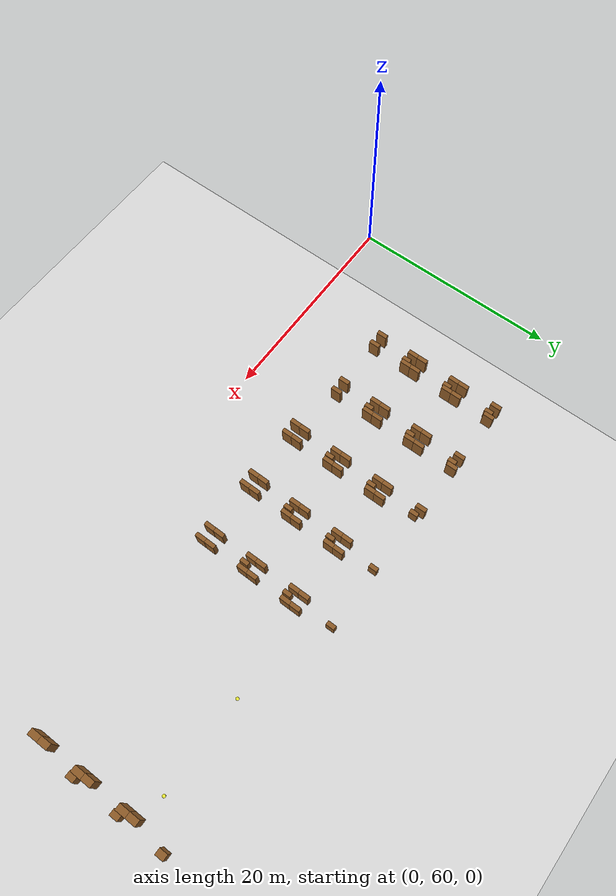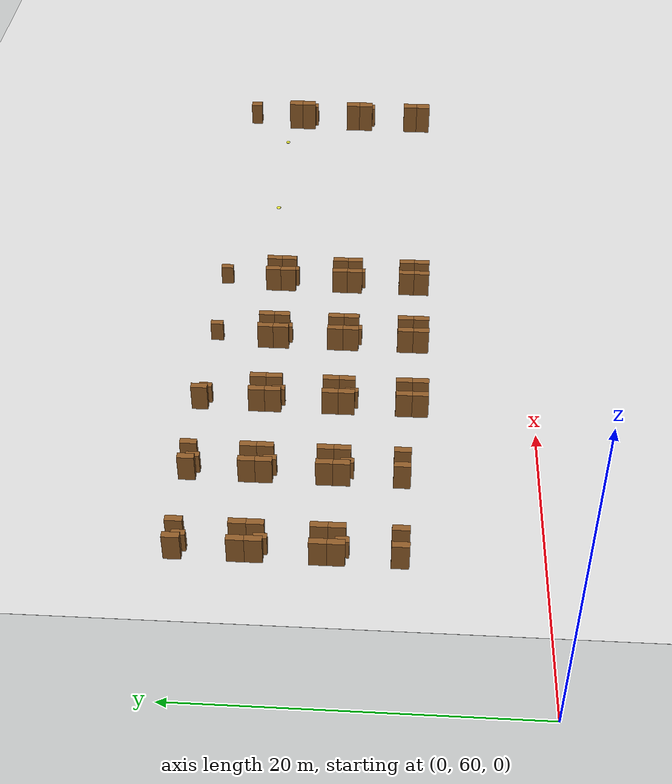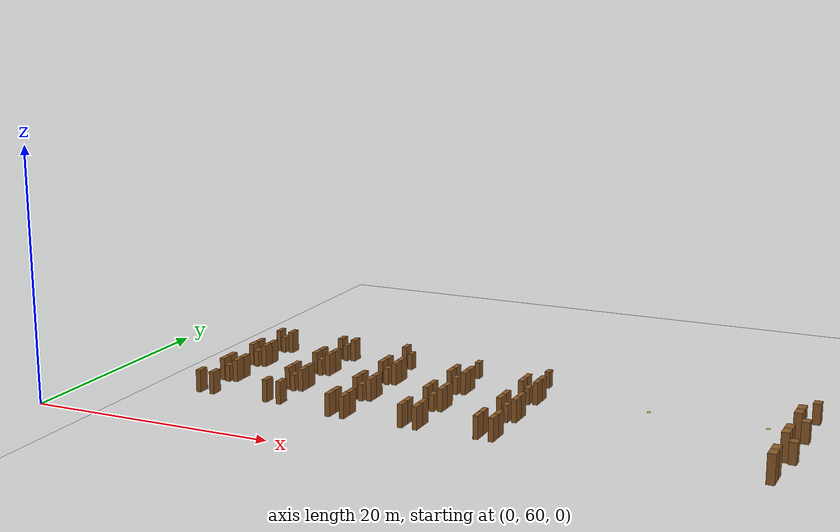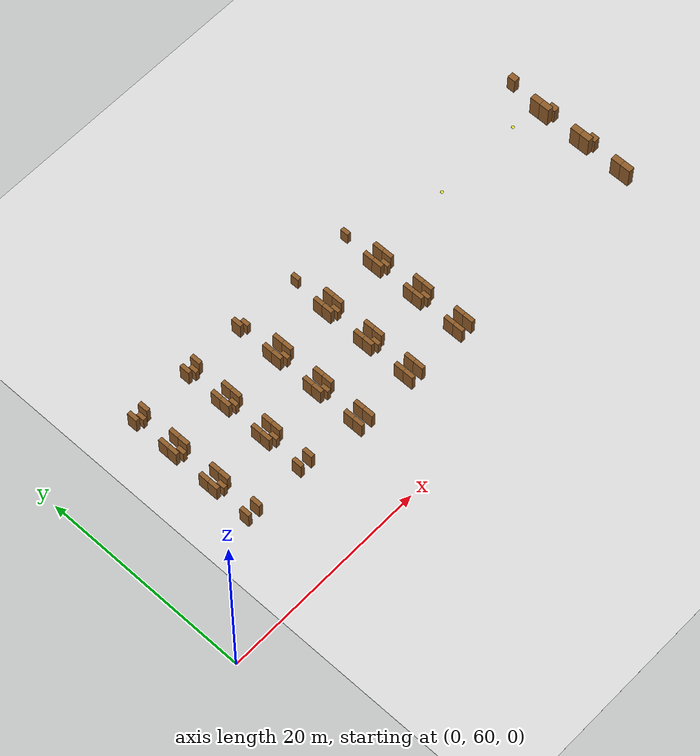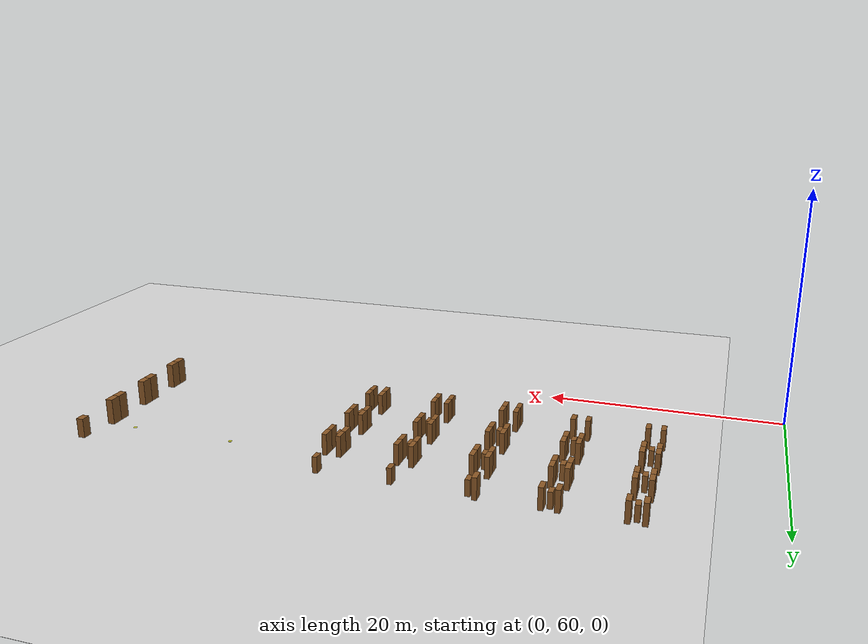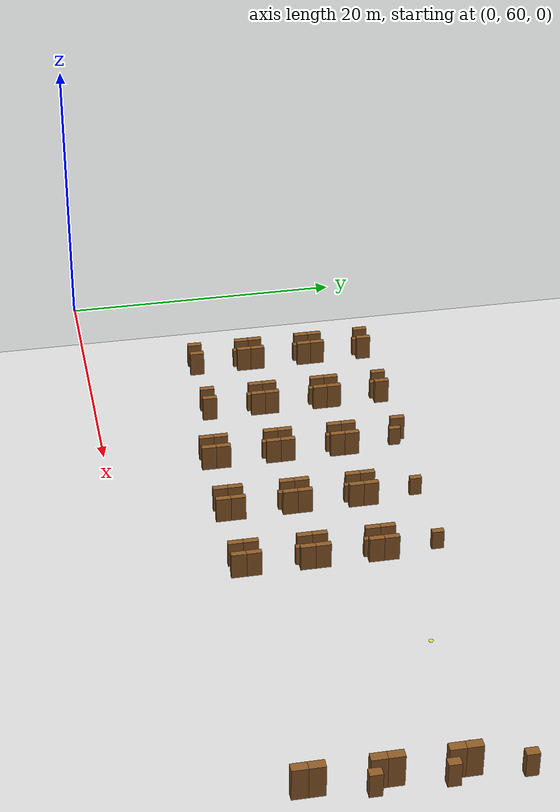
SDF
<sdf version="1.9">
 <world name="realistic_warehouse_150x200m">
  <model name="ground_plane">
   <static>true</static>
   <pose>68.5 102.0 0 0 0 0</pose>
   <link name="ground_link">
    <visual name="ground_visual">
     <geometry><box><size>127.0 194.0 0.01</size></box></geometry>
     <material><ambient>0.85 0.85 0.85 1.0</ambient><diffuse>0.85 0.85 0.85 1.0</diffuse></material>
    </visual>
    <collision name="ground_visual_collision">
     <geometry><box><size>127.0 194.0 0.01</size></box></geometry>
    </collision>
    <collision name="ground_collision">
     <geometry><plane><normal>0 0 1</normal><size>127.0 194.0</size></plane></geometry>
    </collision>
   </link>
  </model>
  <model name="rack_Zone_G_A0_S1_1004">
   <static>true</static>
   <pose>9.4 68.0 0.9 0 0 0</pose>
   <link name="rack_Zone_G_A0_S1_1004_link">
    <visual name="rack_Zone_G_A0_S1_1004_vis">
     <geometry><box><size>0.4 1.0 1.8</size></box></geometry>
     <material><ambient>0.55 0.35 0.15 1.0</ambient><diffuse>0.55 0.35 0.15 1.0</diffuse></material>
    </visual>
    <collision name="rack_Zone_G_A0_S1_1004_vis_collision">
     <geometry><box><size>0.4 1.0 1.8</size></box></geometry>
    </collision>
   </link>
  </model>
  <model name="rack_Zone_G_A0_S1_1006">
   <static>true</static>
   <pose>10.6 68.0 0.9 0 0 0</pose>
   <link name="rack_Zone_G_A0_S1_1006_link">
    <visual name="rack_Zone_G_A0_S1_1006_vis">
     <geometry><box><size>0.4 1.0 1.8</size></box></geometry>
     <material><ambient>0.55 0.35 0.15 1.0</ambient><diffuse>0.55 0.35 0.15 1.0</diffuse></material>
    </visual>
    <collision name="rack_Zone_G_A0_S1_1006_vis_collision">
     <geometry><box><size>0.4 1.0 1.8</size></box></geometry>
    </collision>
   </link>
  </model>
  <model name="rack_Zone_G_A0_S2_1008">
   <static>true</static>
   <pose>9.4 71.5 0.9 0 0 0</pose>
   <link name="rack_Zone_G_A0_S2_1008_link">
    <visual name="rack_Zone_G_A0_S2_1008_vis">
     <geometry><box><size>0.4 1.0 1.8</size></box></geometry>
     <material><ambient>0.55 0.35 0.15 1.0</ambient><diffuse>0.55 0.35 0.15 1.0</diffuse></material>
    </visual>
    <collision name="rack_Zone_G_A0_S2_1008_vis_collision">
     <geometry><box><size>0.4 1.0 1.8</size></box></geometry>
    </collision>
   </link>
  </model>
  <model name="rack_Zone_G_A0_S2_1009">
   <static>true</static>
   <pose>9.4 72.5 0.9 0 0 0</pose>
   <link name="rack_Zone_G_A0_S2_1009_link">
    <visual name="rack_Zone_G_A0_S2_1009_vis">
     <geometry><box><size>0.4 1.0 1.8</size></box></geometry>
     <material><ambient>0.55 0.35 0.15 1.0</ambient><diffuse>0.55 0.35 0.15 1.0</diffuse></material>
    </visual>
    <collision name="rack_Zone_G_A0_S2_1009_vis_collision">
     <geometry><box><size>0.4 1.0 1.8</size></box></geometry>
    </collision>
   </link>
  </model>
  <model name="rack_Zone_G_A0_S2_1010">
   <static>true</static>
   <pose>10.6 71.5 0.9 0 0 0</pose>
   <link name="rack_Zone_G_A0_S2_1010_link">
    <visual name="rack_Zone_G_A0_S2_1010_vis">
     <geometry><box><size>0.4 1.0 1.8</size></box></geometry>
     <material><ambient>0.55 0.35 0.15 1.0</ambient><diffuse>0.55 0.35 0.15 1.0</diffuse></material>
    </visual>
    <collision name="rack_Zone_G_A0_S2_1010_vis_collision">
     <geometry><box><size>0.4 1.0 1.8</size></box></geometry>
    </collision>
   </link>
  </model>
  <model name="rack_Zone_G_A0_S2_1011">
   <static>true</static>
   <pose>10.6 72.5 0.9 0 0 0</pose>
   <link name="rack_Zone_G_A0_S2_1011_link">
    <visual name="rack_Zone_G_A0_S2_1011_vis">
     <geometry><box><size>0.4 1.0 1.8</size></box></geometry>
     <material><ambient>0.55 0.35 0.15 1.0</ambient><diffuse>0.55 0.35 0.15 1.0</diffuse></material>
    </visual>
    <collision name="rack_Zone_G_A0_S2_1011_vis_collision">
     <geometry><box><size>0.4 1.0 1.8</size></box></geometry>
    </collision>
   </link>
  </model>
  <model name="rack_Zone_G_A0_S2_1012">
   <static>true</static>
   <pose>10.0 71.2 0.675 0 0 0</pose>
   <link name="rack_Zone_G_A0_S2_1012_link">
    <visual name="rack_Zone_G_A0_S2_1012_vis">
     <geometry><box><size>0.4 0.8 1.35</size></box></geometry>
     <material><ambient>0.55 0.35 0.15 1.0</ambient><diffuse>0.55 0.35 0.15 1.0</diffuse></material>
    </visual>
    <collision name="rack_Zone_G_A0_S2_1012_vis_collision">
     <geometry><box><size>0.4 0.8 1.35</size></box></geometry>
    </collision>
   </link>
  </model>
  <model name="rack_Zone_G_A0_S3_1013">
   <static>true</static>
   <pose>9.4 76.0 0.9 0 0 0</pose>
   <link name="rack_Zone_G_A0_S3_1013_link">
    <visual name="rack_Zone_G_A0_S3_1013_vis">
     <geometry><box><size>0.4 1.0 1.8</size></box></geometry>
     <material><ambient>0.55 0.35 0.15 1.0</ambient><diffuse>0.55 0.35 0.15 1.0</diffuse></material>
    </visual>
    <collision name="rack_Zone_G_A0_S3_1013_vis_collision">
     <geometry><box><size>0.4 1.0 1.8</size></box></geometry>
    </collision>
   </link>
  </model>
  <model name="rack_Zone_G_A0_S3_1014">
   <static>true</static>
   <pose>9.4 77.0 0.9 0 0 0</pose>
   <link name="rack_Zone_G_A0_S3_1014_link">
    <visual name="rack_Zone_G_A0_S3_1014_vis">
     <geometry><box><size>0.4 1.0 1.8</size></box></geometry>
     <material><ambient>0.55 0.35 0.15 1.0</ambient><diffuse>0.55 0.35 0.15 1.0</diffuse></material>
    </visual>
    <collision name="rack_Zone_G_A0_S3_1014_vis_collision">
     <geometry><box><size>0.4 1.0 1.8</size></box></geometry>
    </collision>
   </link>
  </model>
  <model name="rack_Zone_G_A0_S3_1015">
   <static>true</static>
   <pose>10.6 76.0 0.9 0 0 0</pose>
   <link name="rack_Zone_G_A0_S3_1015_link">
    <visual name="rack_Zone_G_A0_S3_1015_vis">
     <geometry><box><size>0.4 1.0 1.8</size></box></geometry>
     <material><ambient>0.55 0.35 0.15 1.0</ambient><diffuse>0.55 0.35 0.15 1.0</diffuse></material>
    </visual>
    <collision name="rack_Zone_G_A0_S3_1015_vis_collision">
     <geometry><box><size>0.4 1.0 1.8</size></box></geometry>
    </collision>
   </link>
  </model>
  <model name="rack_Zone_G_A0_S3_1016">
   <static>true</static>
   <pose>10.6 77.0 0.9 0 0 0</pose>
   <link name="rack_Zone_G_A0_S3_1016_link">
    <visual name="rack_Zone_G_A0_S3_1016_vis">
     <geometry><box><size>0.4 1.0 1.8</size></box></geometry>
     <material><ambient>0.55 0.35 0.15 1.0</ambient><diffuse>0.55 0.35 0.15 1.0</diffuse></material>
    </visual>
    <collision name="rack_Zone_G_A0_S3_1016_vis_collision">
     <geometry><box><size>0.4 1.0 1.8</size></box></geometry>
    </collision>
   </link>
  </model>
  <model name="rack_Zone_G_A0_S3_1017">
   <static>true</static>
   <pose>10.0 75.7 0.675 0 0 0</pose>
   <link name="rack_Zone_G_A0_S3_1017_link">
    <visual name="rack_Zone_G_A0_S3_1017_vis">
     <geometry><box><size>0.4 0.8 1.35</size></box></geometry>
     <material><ambient>0.55 0.35 0.15 1.0</ambient><diffuse>0.55 0.35 0.15 1.0</diffuse></material>
    </visual>
    <collision name="rack_Zone_G_A0_S3_1017_vis_collision">
     <geometry><box><size>0.4 0.8 1.35</size></box></geometry>
    </collision>
   </link>
  </model>
  <model name="rack_Zone_G_A0_S4_1018">
   <static>true</static>
   <pose>9.4 80.5 0.9 0 0 0</pose>
   <link name="rack_Zone_G_A0_S4_1018_link">
    <visual name="rack_Zone_G_A0_S4_1018_vis">
     <geometry><box><size>0.4 1.0 1.8</size></box></geometry>
     <material><ambient>0.55 0.35 0.15 1.0</ambient><diffuse>0.55 0.35 0.15 1.0</diffuse></material>
    </visual>
    <collision name="rack_Zone_G_A0_S4_1018_vis_collision">
     <geometry><box><size>0.4 1.0 1.8</size></box></geometry>
    </collision>
   </link>
  </model>
  <model name="rack_Zone_G_A0_S4_1020">
   <static>true</static>
   <pose>10.6 80.5 0.9 0 0 0</pose>
   <link name="rack_Zone_G_A0_S4_1020_link">
    <visual name="rack_Zone_G_A0_S4_1020_vis">
     <geometry><box><size>0.4 1.0 1.8</size></box></geometry>
     <material><ambient>0.55 0.35 0.15 1.0</ambient><diffuse>0.55 0.35 0.15 1.0</diffuse></material>
    </visual>
    <collision name="rack_Zone_G_A0_S4_1020_vis_collision">
     <geometry><box><size>0.4 1.0 1.8</size></box></geometry>
    </collision>
   </link>
  </model>
  <model name="rack_Zone_G_A0_S4_1022">
   <static>true</static>
   <pose>10.0 80.2 0.675 0 0 0</pose>
   <link name="rack_Zone_G_A0_S4_1022_link">
    <visual name="rack_Zone_G_A0_S4_1022_vis">
     <geometry><box><size>0.4 0.8 1.35</size></box></geometry>
     <material><ambient>0.55 0.35 0.15 1.0</ambient><diffuse>0.55 0.35 0.15 1.0</diffuse></material>
    </visual>
    <collision name="rack_Zone_G_A0_S4_1022_vis_collision">
     <geometry><box><size>0.4 0.8 1.35</size></box></geometry>
    </collision>
   </link>
  </model>
  <model name="rack_Zone_G_A1_S1_1048">
   <static>true</static>
   <pose>15.4 68.0 0.9 0 0 0</pose>
   <link name="rack_Zone_G_A1_S1_1048_link">
    <visual name="rack_Zone_G_A1_S1_1048_vis">
     <geometry><box><size>0.4 1.0 1.8</size></box></geometry>
     <material><ambient>0.55 0.35 0.15 1.0</ambient><diffuse>0.55 0.35 0.15 1.0</diffuse></material>
    </visual>
    <collision name="rack_Zone_G_A1_S1_1048_vis_collision">
     <geometry><box><size>0.4 1.0 1.8</size></box></geometry>
    </collision>
   </link>
  </model>
  <model name="rack_Zone_G_A1_S1_1050">
   <static>true</static>
   <pose>16.6 68.0 0.9 0 0 0</pose>
   <link name="rack_Zone_G_A1_S1_1050_link">
    <visual name="rack_Zone_G_A1_S1_1050_vis">
     <geometry><box><size>0.4 1.0 1.8</size></box></geometry>
     <material><ambient>0.55 0.35 0.15 1.0</ambient><diffuse>0.55 0.35 0.15 1.0</diffuse></material>
    </visual>
    <collision name="rack_Zone_G_A1_S1_1050_vis_collision">
     <geometry><box><size>0.4 1.0 1.8</size></box></geometry>
    </collision>
   </link>
  </model>
  <model name="rack_Zone_G_A1_S2_1052">
   <static>true</static>
   <pose>15.4 71.5 0.9 0 0 0</pose>
   <link name="rack_Zone_G_A1_S2_1052_link">
    <visual name="rack_Zone_G_A1_S2_1052_vis">
     <geometry><box><size>0.4 1.0 1.8</size></box></geometry>
     <material><ambient>0.55 0.35 0.15 1.0</ambient><diffuse>0.55 0.35 0.15 1.0</diffuse></material>
    </visual>
    <collision name="rack_Zone_G_A1_S2_1052_vis_collision">
     <geometry><box><size>0.4 1.0 1.8</size></box></geometry>
    </collision>
   </link>
  </model>
  <model name="rack_Zone_G_A1_S2_1053">
   <static>true</static>
   <pose>15.4 72.5 0.9 0 0 0</pose>
   <link name="rack_Zone_G_A1_S2_1053_link">
    <visual name="rack_Zone_G_A1_S2_1053_vis">
     <geometry><box><size>0.4 1.0 1.8</size></box></geometry>
     <material><ambient>0.55 0.35 0.15 1.0</ambient><diffuse>0.55 0.35 0.15 1.0</diffuse></material>
    </visual>
    <collision name="rack_Zone_G_A1_S2_1053_vis_collision">
     <geometry><box><size>0.4 1.0 1.8</size></box></geometry>
    </collision>
   </link>
  </model>
  <model name="rack_Zone_G_A1_S2_1054">
   <static>true</static>
   <pose>16.6 71.5 0.9 0 0 0</pose>
   <link name="rack_Zone_G_A1_S2_1054_link">
    <visual name="rack_Zone_G_A1_S2_1054_vis">
     <geometry><box><size>0.4 1.0 1.8</size></box></geometry>
     <material><ambient>0.55 0.35 0.15 1.0</ambient><diffuse>0.55 0.35 0.15 1.0</diffuse></material>
    </visual>
    <collision name="rack_Zone_G_A1_S2_1054_vis_collision">
     <geometry><box><size>0.4 1.0 1.8</size></box></geometry>
    </collision>
   </link>
  </model>
  <model name="rack_Zone_G_A1_S2_1055">
   <static>true</static>
   <pose>16.6 72.5 0.9 0 0 0</pose>
   <link name="rack_Zone_G_A1_S2_1055_link">
    <visual name="rack_Zone_G_A1_S2_1055_vis">
     <geometry><box><size>0.4 1.0 1.8</size></box></geometry>
     <material><ambient>0.55 0.35 0.15 1.0</ambient><diffuse>0.55 0.35 0.15 1.0</diffuse></material>
    </visual>
    <collision name="rack_Zone_G_A1_S2_1055_vis_collision">
     <geometry><box><size>0.4 1.0 1.8</size></box></geometry>
    </collision>
   </link>
  </model>
  <model name="rack_Zone_G_A1_S2_1056">
   <static>true</static>
   <pose>16.0 71.2 0.675 0 0 0</pose>
   <link name="rack_Zone_G_A1_S2_1056_link">
    <visual name="rack_Zone_G_A1_S2_1056_vis">
     <geometry><box><size>0.4 0.8 1.35</size></box></geometry>
     <material><ambient>0.55 0.35 0.15 1.0</ambient><diffuse>0.55 0.35 0.15 1.0</diffuse></material>
    </visual>
    <collision name="rack_Zone_G_A1_S2_1056_vis_collision">
     <geometry><box><size>0.4 0.8 1.35</size></box></geometry>
    </collision>
   </link>
  </model>
  <model name="rack_Zone_G_A1_S3_1057">
   <static>true</static>
   <pose>15.4 76.0 0.9 0 0 0</pose>
   <link name="rack_Zone_G_A1_S3_1057_link">
    <visual name="rack_Zone_G_A1_S3_1057_vis">
     <geometry><box><size>0.4 1.0 1.8</size></box></geometry>
     <material><ambient>0.55 0.35 0.15 1.0</ambient><diffuse>0.55 0.35 0.15 1.0</diffuse></material>
    </visual>
    <collision name="rack_Zone_G_A1_S3_1057_vis_collision">
     <geometry><box><size>0.4 1.0 1.8</size></box></geometry>
    </collision>
   </link>
  </model>
  <model name="rack_Zone_G_A1_S3_1058">
   <static>true</static>
   <pose>15.4 77.0 0.9 0 0 0</pose>
   <link name="rack_Zone_G_A1_S3_1058_link">
    <visual name="rack_Zone_G_A1_S3_1058_vis">
     <geometry><box><size>0.4 1.0 1.8</size></box></geometry>
     <material><ambient>0.55 0.35 0.15 1.0</ambient><diffuse>0.55 0.35 0.15 1.0</diffuse></material>
    </visual>
    <collision name="rack_Zone_G_A1_S3_1058_vis_collision">
     <geometry><box><size>0.4 1.0 1.8</size></box></geometry>
    </collision>
   </link>
  </model>
  <model name="rack_Zone_G_A1_S3_1059">
   <static>true</static>
   <pose>16.6 76.0 0.9 0 0 0</pose>
   <link name="rack_Zone_G_A1_S3_1059_link">
    <visual name="rack_Zone_G_A1_S3_1059_vis">
     <geometry><box><size>0.4 1.0 1.8</size></box></geometry>
     <material><ambient>0.55 0.35 0.15 1.0</ambient><diffuse>0.55 0.35 0.15 1.0</diffuse></material>
    </visual>
    <collision name="rack_Zone_G_A1_S3_1059_vis_collision">
     <geometry><box><size>0.4 1.0 1.8</size></box></geometry>
    </collision>
   </link>
  </model>
  <model name="rack_Zone_G_A1_S3_1060">
   <static>true</static>
   <pose>16.6 77.0 0.9 0 0 0</pose>
   <link name="rack_Zone_G_A1_S3_1060_link">
    <visual name="rack_Zone_G_A1_S3_1060_vis">
     <geometry><box><size>0.4 1.0 1.8</size></box></geometry>
     <material><ambient>0.55 0.35 0.15 1.0</ambient><diffuse>0.55 0.35 0.15 1.0</diffuse></material>
    </visual>
    <collision name="rack_Zone_G_A1_S3_1060_vis_collision">
     <geometry><box><size>0.4 1.0 1.8</size></box></geometry>
    </collision>
   </link>
  </model>
  <model name="rack_Zone_G_A1_S3_1061">
   <static>true</static>
   <pose>16.0 75.7 0.675 0 0 0</pose>
   <link name="rack_Zone_G_A1_S3_1061_link">
    <visual name="rack_Zone_G_A1_S3_1061_vis">
     <geometry><box><size>0.4 0.8 1.35</size></box></geometry>
     <material><ambient>0.55 0.35 0.15 1.0</ambient><diffuse>0.55 0.35 0.15 1.0</diffuse></material>
    </visual>
    <collision name="rack_Zone_G_A1_S3_1061_vis_collision">
     <geometry><box><size>0.4 0.8 1.35</size></box></geometry>
    </collision>
   </link>
  </model>
  <model name="rack_Zone_G_A1_S4_1062">
   <static>true</static>
   <pose>15.4 80.5 0.9 0 0 0</pose>
   <link name="rack_Zone_G_A1_S4_1062_link">
    <visual name="rack_Zone_G_A1_S4_1062_vis">
     <geometry><box><size>0.4 1.0 1.8</size></box></geometry>
     <material><ambient>0.55 0.35 0.15 1.0</ambient><diffuse>0.55 0.35 0.15 1.0</diffuse></material>
    </visual>
    <collision name="rack_Zone_G_A1_S4_1062_vis_collision">
     <geometry><box><size>0.4 1.0 1.8</size></box></geometry>
    </collision>
   </link>
  </model>
  <model name="rack_Zone_G_A1_S4_1064">
   <static>true</static>
   <pose>16.6 80.5 0.9 0 0 0</pose>
   <link name="rack_Zone_G_A1_S4_1064_link">
    <visual name="rack_Zone_G_A1_S4_1064_vis">
     <geometry><box><size>0.4 1.0 1.8</size></box></geometry>
     <material><ambient>0.55 0.35 0.15 1.0</ambient><diffuse>0.55 0.35 0.15 1.0</diffuse></material>
    </visual>
    <collision name="rack_Zone_G_A1_S4_1064_vis_collision">
     <geometry><box><size>0.4 1.0 1.8</size></box></geometry>
    </collision>
   </link>
  </model>
  <model name="rack_Zone_G_A1_S4_1066">
   <static>true</static>
   <pose>16.0 80.2 0.675 0 0 0</pose>
   <link name="rack_Zone_G_A1_S4_1066_link">
    <visual name="rack_Zone_G_A1_S4_1066_vis">
     <geometry><box><size>0.4 0.8 1.35</size></box></geometry>
     <material><ambient>0.55 0.35 0.15 1.0</ambient><diffuse>0.55 0.35 0.15 1.0</diffuse></material>
    </visual>
    <collision name="rack_Zone_G_A1_S4_1066_vis_collision">
     <geometry><box><size>0.4 0.8 1.35</size></box></geometry>
    </collision>
   </link>
  </model>
  <model name="rack_Zone_G_A2_S1_1091">
   <static>true</static>
   <pose>21.4 67.0 0.9 0 0 0</pose>
   <link name="rack_Zone_G_A2_S1_1091_link">
    <visual name="rack_Zone_G_A2_S1_1091_vis">
     <geometry><box><size>0.4 1.0 1.8</size></box></geometry>
     <material><ambient>0.55 0.35 0.15 1.0</ambient><diffuse>0.55 0.35 0.15 1.0</diffuse></material>
    </visual>
    <collision name="rack_Zone_G_A2_S1_1091_vis_collision">
     <geometry><box><size>0.4 1.0 1.8</size></box></geometry>
    </collision>
   </link>
  </model>
  <model name="rack_Zone_G_A2_S1_1092">
   <static>true</static>
   <pose>21.4 68.0 0.9 0 0 0</pose>
   <link name="rack_Zone_G_A2_S1_1092_link">
    <visual name="rack_Zone_G_A2_S1_1092_vis">
     <geometry><box><size>0.4 1.0 1.8</size></box></geometry>
     <material><ambient>0.55 0.35 0.15 1.0</ambient><diffuse>0.55 0.35 0.15 1.0</diffuse></material>
    </visual>
    <collision name="rack_Zone_G_A2_S1_1092_vis_collision">
     <geometry><box><size>0.4 1.0 1.8</size></box></geometry>
    </collision>
   </link>
  </model>
  <model name="rack_Zone_G_A2_S1_1093">
   <static>true</static>
   <pose>22.6 67.0 0.9 0 0 0</pose>
   <link name="rack_Zone_G_A2_S1_1093_link">
    <visual name="rack_Zone_G_A2_S1_1093_vis">
     <geometry><box><size>0.4 1.0 1.8</size></box></geometry>
     <material><ambient>0.55 0.35 0.15 1.0</ambient><diffuse>0.55 0.35 0.15 1.0</diffuse></material>
    </visual>
    <collision name="rack_Zone_G_A2_S1_1093_vis_collision">
     <geometry><box><size>0.4 1.0 1.8</size></box></geometry>
    </collision>
   </link>
  </model>
  <model name="rack_Zone_G_A2_S1_1094">
   <static>true</static>
   <pose>22.6 68.0 0.9 0 0 0</pose>
   <link name="rack_Zone_G_A2_S1_1094_link">
    <visual name="rack_Zone_G_A2_S1_1094_vis">
     <geometry><box><size>0.4 1.0 1.8</size></box></geometry>
     <material><ambient>0.55 0.35 0.15 1.0</ambient><diffuse>0.55 0.35 0.15 1.0</diffuse></material>
    </visual>
    <collision name="rack_Zone_G_A2_S1_1094_vis_collision">
     <geometry><box><size>0.4 1.0 1.8</size></box></geometry>
    </collision>
   </link>
  </model>
  <model name="rack_Zone_G_A2_S2_1096">
   <static>true</static>
   <pose>21.4 71.5 0.9 0 0 0</pose>
   <link name="rack_Zone_G_A2_S2_1096_link">
    <visual name="rack_Zone_G_A2_S2_1096_vis">
     <geometry><box><size>0.4 1.0 1.8</size></box></geometry>
     <material><ambient>0.55 0.35 0.15 1.0</ambient><diffuse>0.55 0.35 0.15 1.0</diffuse></material>
    </visual>
    <collision name="rack_Zone_G_A2_S2_1096_vis_collision">
     <geometry><box><size>0.4 1.0 1.8</size></box></geometry>
    </collision>
   </link>
  </model>
  <model name="rack_Zone_G_A2_S2_1097">
   <static>true</static>
   <pose>21.4 72.5 0.9 0 0 0</pose>
   <link name="rack_Zone_G_A2_S2_1097_link">
    <visual name="rack_Zone_G_A2_S2_1097_vis">
     <geometry><box><size>0.4 1.0 1.8</size></box></geometry>
     <material><ambient>0.55 0.35 0.15 1.0</ambient><diffuse>0.55 0.35 0.15 1.0</diffuse></material>
    </visual>
    <collision name="rack_Zone_G_A2_S2_1097_vis_collision">
     <geometry><box><size>0.4 1.0 1.8</size></box></geometry>
    </collision>
   </link>
  </model>
  <model name="rack_Zone_G_A2_S2_1098">
   <static>true</static>
   <pose>22.6 71.5 0.9 0 0 0</pose>
   <link name="rack_Zone_G_A2_S2_1098_link">
    <visual name="rack_Zone_G_A2_S2_1098_vis">
     <geometry><box><size>0.4 1.0 1.8</size></box></geometry>
     <material><ambient>0.55 0.35 0.15 1.0</ambient><diffuse>0.55 0.35 0.15 1.0</diffuse></material>
    </visual>
    <collision name="rack_Zone_G_A2_S2_1098_vis_collision">
     <geometry><box><size>0.4 1.0 1.8</size></box></geometry>
    </collision>
   </link>
  </model>
  <model name="rack_Zone_G_A2_S2_1099">
   <static>true</static>
   <pose>22.6 72.5 0.9 0 0 0</pose>
   <link name="rack_Zone_G_A2_S2_1099_link">
    <visual name="rack_Zone_G_A2_S2_1099_vis">
     <geometry><box><size>0.4 1.0 1.8</size></box></geometry>
     <material><ambient>0.55 0.35 0.15 1.0</ambient><diffuse>0.55 0.35 0.15 1.0</diffuse></material>
    </visual>
    <collision name="rack_Zone_G_A2_S2_1099_vis_collision">
     <geometry><box><size>0.4 1.0 1.8</size></box></geometry>
    </collision>
   </link>
  </model>
  <model name="rack_Zone_G_A2_S2_1100">
   <static>true</static>
   <pose>22.0 71.2 0.675 0 0 0</pose>
   <link name="rack_Zone_G_A2_S2_1100_link">
    <visual name="rack_Zone_G_A2_S2_1100_vis">
     <geometry><box><size>0.4 0.8 1.35</size></box></geometry>
     <material><ambient>0.55 0.35 0.15 1.0</ambient><diffuse>0.55 0.35 0.15 1.0</diffuse></material>
    </visual>
    <collision name="rack_Zone_G_A2_S2_1100_vis_collision">
     <geometry><box><size>0.4 0.8 1.35</size></box></geometry>
    </collision>
   </link>
  </model>
  <model name="rack_Zone_G_A2_S3_1101">
   <static>true</static>
   <pose>21.4 76.0 0.9 0 0 0</pose>
   <link name="rack_Zone_G_A2_S3_1101_link">
    <visual name="rack_Zone_G_A2_S3_1101_vis">
     <geometry><box><size>0.4 1.0 1.8</size></box></geometry>
     <material><ambient>0.55 0.35 0.15 1.0</ambient><diffuse>0.55 0.35 0.15 1.0</diffuse></material>
    </visual>
    <collision name="rack_Zone_G_A2_S3_1101_vis_collision">
     <geometry><box><size>0.4 1.0 1.8</size></box></geometry>
    </collision>
   </link>
  </model>
  <model name="rack_Zone_G_A2_S3_1102">
   <static>true</static>
   <pose>21.4 77.0 0.9 0 0 0</pose>
   <link name="rack_Zone_G_A2_S3_1102_link">
    <visual name="rack_Zone_G_A2_S3_1102_vis">
     <geometry><box><size>0.4 1.0 1.8</size></box></geometry>
     <material><ambient>0.55 0.35 0.15 1.0</ambient><diffuse>0.55 0.35 0.15 1.0</diffuse></material>
    </visual>
    <collision name="rack_Zone_G_A2_S3_1102_vis_collision">
     <geometry><box><size>0.4 1.0 1.8</size></box></geometry>
    </collision>
   </link>
  </model>
  <model name="rack_Zone_G_A2_S3_1103">
   <static>true</static>
   <pose>22.6 76.0 0.9 0 0 0</pose>
   <link name="rack_Zone_G_A2_S3_1103_link">
    <visual name="rack_Zone_G_A2_S3_1103_vis">
     <geometry><box><size>0.4 1.0 1.8</size></box></geometry>
     <material><ambient>0.55 0.35 0.15 1.0</ambient><diffuse>0.55 0.35 0.15 1.0</diffuse></material>
    </visual>
    <collision name="rack_Zone_G_A2_S3_1103_vis_collision">
     <geometry><box><size>0.4 1.0 1.8</size></box></geometry>
    </collision>
   </link>
  </model>
  <model name="rack_Zone_G_A2_S3_1104">
   <static>true</static>
   <pose>22.6 77.0 0.9 0 0 0</pose>
   <link name="rack_Zone_G_A2_S3_1104_link">
    <visual name="rack_Zone_G_A2_S3_1104_vis">
     <geometry><box><size>0.4 1.0 1.8</size></box></geometry>
     <material><ambient>0.55 0.35 0.15 1.0</ambient><diffuse>0.55 0.35 0.15 1.0</diffuse></material>
    </visual>
    <collision name="rack_Zone_G_A2_S3_1104_vis_collision">
     <geometry><box><size>0.4 1.0 1.8</size></box></geometry>
    </collision>
   </link>
  </model>
  <model name="rack_Zone_G_A2_S3_1105">
   <static>true</static>
   <pose>22.0 75.7 0.675 0 0 0</pose>
   <link name="rack_Zone_G_A2_S3_1105_link">
    <visual name="rack_Zone_G_A2_S3_1105_vis">
     <geometry><box><size>0.4 0.8 1.35</size></box></geometry>
     <material><ambient>0.55 0.35 0.15 1.0</ambient><diffuse>0.55 0.35 0.15 1.0</diffuse></material>
    </visual>
    <collision name="rack_Zone_G_A2_S3_1105_vis_collision">
     <geometry><box><size>0.4 0.8 1.35</size></box></geometry>
    </collision>
   </link>
  </model>
  <model name="rack_Zone_G_A2_S4_1106">
   <static>true</static>
   <pose>21.4 80.5 0.9 0 0 0</pose>
   <link name="rack_Zone_G_A2_S4_1106_link">
    <visual name="rack_Zone_G_A2_S4_1106_vis">
     <geometry><box><size>0.4 1.0 1.8</size></box></geometry>
     <material><ambient>0.55 0.35 0.15 1.0</ambient><diffuse>0.55 0.35 0.15 1.0</diffuse></material>
    </visual>
    <collision name="rack_Zone_G_A2_S4_1106_vis_collision">
     <geometry><box><size>0.4 1.0 1.8</size></box></geometry>
    </collision>
   </link>
  </model>
  <model name="rack_Zone_G_A2_S4_1110">
   <static>true</static>
   <pose>22.0 80.2 0.675 0 0 0</pose>
   <link name="rack_Zone_G_A2_S4_1110_link">
    <visual name="rack_Zone_G_A2_S4_1110_vis">
     <geometry><box><size>0.4 0.8 1.35</size></box></geometry>
     <material><ambient>0.55 0.35 0.15 1.0</ambient><diffuse>0.55 0.35 0.15 1.0</diffuse></material>
    </visual>
    <collision name="rack_Zone_G_A2_S4_1110_vis_collision">
     <geometry><box><size>0.4 0.8 1.35</size></box></geometry>
    </collision>
   </link>
  </model>
  <model name="rack_Zone_G_A3_S1_1135">
   <static>true</static>
   <pose>27.4 67.0 0.9 0 0 0</pose>
   <link name="rack_Zone_G_A3_S1_1135_link">
    <visual name="rack_Zone_G_A3_S1_1135_vis">
     <geometry><box><size>0.4 1.0 1.8</size></box></geometry>
     <material><ambient>0.55 0.35 0.15 1.0</ambient><diffuse>0.55 0.35 0.15 1.0</diffuse></material>
    </visual>
    <collision name="rack_Zone_G_A3_S1_1135_vis_collision">
     <geometry><box><size>0.4 1.0 1.8</size></box></geometry>
    </collision>
   </link>
  </model>
  <model name="rack_Zone_G_A3_S1_1136">
   <static>true</static>
   <pose>27.4 68.0 0.9 0 0 0</pose>
   <link name="rack_Zone_G_A3_S1_1136_link">
    <visual name="rack_Zone_G_A3_S1_1136_vis">
     <geometry><box><size>0.4 1.0 1.8</size></box></geometry>
     <material><ambient>0.55 0.35 0.15 1.0</ambient><diffuse>0.55 0.35 0.15 1.0</diffuse></material>
    </visual>
    <collision name="rack_Zone_G_A3_S1_1136_vis_collision">
     <geometry><box><size>0.4 1.0 1.8</size></box></geometry>
    </collision>
   </link>
  </model>
  <model name="rack_Zone_G_A3_S1_1137">
   <static>true</static>
   <pose>28.6 67.0 0.9 0 0 0</pose>
   <link name="rack_Zone_G_A3_S1_1137_link">
    <visual name="rack_Zone_G_A3_S1_1137_vis">
     <geometry><box><size>0.4 1.0 1.8</size></box></geometry>
     <material><ambient>0.55 0.35 0.15 1.0</ambient><diffuse>0.55 0.35 0.15 1.0</diffuse></material>
    </visual>
    <collision name="rack_Zone_G_A3_S1_1137_vis_collision">
     <geometry><box><size>0.4 1.0 1.8</size></box></geometry>
    </collision>
   </link>
  </model>
  <model name="rack_Zone_G_A3_S1_1138">
   <static>true</static>
   <pose>28.6 68.0 0.9 0 0 0</pose>
   <link name="rack_Zone_G_A3_S1_1138_link">
    <visual name="rack_Zone_G_A3_S1_1138_vis">
     <geometry><box><size>0.4 1.0 1.8</size></box></geometry>
     <material><ambient>0.55 0.35 0.15 1.0</ambient><diffuse>0.55 0.35 0.15 1.0</diffuse></material>
    </visual>
    <collision name="rack_Zone_G_A3_S1_1138_vis_collision">
     <geometry><box><size>0.4 1.0 1.8</size></box></geometry>
    </collision>
   </link>
  </model>
  <model name="rack_Zone_G_A3_S2_1140">
   <static>true</static>
   <pose>27.4 71.5 0.9 0 0 0</pose>
   <link name="rack_Zone_G_A3_S2_1140_link">
    <visual name="rack_Zone_G_A3_S2_1140_vis">
     <geometry><box><size>0.4 1.0 1.8</size></box></geometry>
     <material><ambient>0.55 0.35 0.15 1.0</ambient><diffuse>0.55 0.35 0.15 1.0</diffuse></material>
    </visual>
    <collision name="rack_Zone_G_A3_S2_1140_vis_collision">
     <geometry><box><size>0.4 1.0 1.8</size></box></geometry>
    </collision>
   </link>
  </model>
  <model name="rack_Zone_G_A3_S2_1141">
   <static>true</static>
   <pose>27.4 72.5 0.9 0 0 0</pose>
   <link name="rack_Zone_G_A3_S2_1141_link">
    <visual name="rack_Zone_G_A3_S2_1141_vis">
     <geometry><box><size>0.4 1.0 1.8</size></box></geometry>
     <material><ambient>0.55 0.35 0.15 1.0</ambient><diffuse>0.55 0.35 0.15 1.0</diffuse></material>
    </visual>
    <collision name="rack_Zone_G_A3_S2_1141_vis_collision">
     <geometry><box><size>0.4 1.0 1.8</size></box></geometry>
    </collision>
   </link>
  </model>
  <model name="rack_Zone_G_A3_S2_1142">
   <static>true</static>
   <pose>28.6 71.5 0.9 0 0 0</pose>
   <link name="rack_Zone_G_A3_S2_1142_link">
    <visual name="rack_Zone_G_A3_S2_1142_vis">
     <geometry><box><size>0.4 1.0 1.8</size></box></geometry>
     <material><ambient>0.55 0.35 0.15 1.0</ambient><diffuse>0.55 0.35 0.15 1.0</diffuse></material>
    </visual>
    <collision name="rack_Zone_G_A3_S2_1142_vis_collision">
     <geometry><box><size>0.4 1.0 1.8</size></box></geometry>
    </collision>
   </link>
  </model>
  <model name="rack_Zone_G_A3_S2_1143">
   <static>true</static>
   <pose>28.6 72.5 0.9 0 0 0</pose>
   <link name="rack_Zone_G_A3_S2_1143_link">
    <visual name="rack_Zone_G_A3_S2_1143_vis">
     <geometry><box><size>0.4 1.0 1.8</size></box></geometry>
     <material><ambient>0.55 0.35 0.15 1.0</ambient><diffuse>0.55 0.35 0.15 1.0</diffuse></material>
    </visual>
    <collision name="rack_Zone_G_A3_S2_1143_vis_collision">
     <geometry><box><size>0.4 1.0 1.8</size></box></geometry>
    </collision>
   </link>
  </model>
  <model name="rack_Zone_G_A3_S2_1144">
   <static>true</static>
   <pose>28.0 71.2 0.675 0 0 0</pose>
   <link name="rack_Zone_G_A3_S2_1144_link">
    <visual name="rack_Zone_G_A3_S2_1144_vis">
     <geometry><box><size>0.4 0.8 1.35</size></box></geometry>
     <material><ambient>0.55 0.35 0.15 1.0</ambient><diffuse>0.55 0.35 0.15 1.0</diffuse></material>
    </visual>
    <collision name="rack_Zone_G_A3_S2_1144_vis_collision">
     <geometry><box><size>0.4 0.8 1.35</size></box></geometry>
    </collision>
   </link>
  </model>
  <model name="rack_Zone_G_A3_S3_1145">
   <static>true</static>
   <pose>27.4 76.0 0.9 0 0 0</pose>
   <link name="rack_Zone_G_A3_S3_1145_link">
    <visual name="rack_Zone_G_A3_S3_1145_vis">
     <geometry><box><size>0.4 1.0 1.8</size></box></geometry>
     <material><ambient>0.55 0.35 0.15 1.0</ambient><diffuse>0.55 0.35 0.15 1.0</diffuse></material>
    </visual>
    <collision name="rack_Zone_G_A3_S3_1145_vis_collision">
     <geometry><box><size>0.4 1.0 1.8</size></box></geometry>
    </collision>
   </link>
  </model>
  <model name="rack_Zone_G_A3_S3_1146">
   <static>true</static>
   <pose>27.4 77.0 0.9 0 0 0</pose>
   <link name="rack_Zone_G_A3_S3_1146_link">
    <visual name="rack_Zone_G_A3_S3_1146_vis">
     <geometry><box><size>0.4 1.0 1.8</size></box></geometry>
     <material><ambient>0.55 0.35 0.15 1.0</ambient><diffuse>0.55 0.35 0.15 1.0</diffuse></material>
    </visual>
    <collision name="rack_Zone_G_A3_S3_1146_vis_collision">
     <geometry><box><size>0.4 1.0 1.8</size></box></geometry>
    </collision>
   </link>
  </model>
  <model name="rack_Zone_G_A3_S3_1147">
   <static>true</static>
   <pose>28.6 76.0 0.9 0 0 0</pose>
   <link name="rack_Zone_G_A3_S3_1147_link">
    <visual name="rack_Zone_G_A3_S3_1147_vis">
     <geometry><box><size>0.4 1.0 1.8</size></box></geometry>
     <material><ambient>0.55 0.35 0.15 1.0</ambient><diffuse>0.55 0.35 0.15 1.0</diffuse></material>
    </visual>
    <collision name="rack_Zone_G_A3_S3_1147_vis_collision">
     <geometry><box><size>0.4 1.0 1.8</size></box></geometry>
    </collision>
   </link>
  </model>
  <model name="rack_Zone_G_A3_S3_1148">
   <static>true</static>
   <pose>28.6 77.0 0.9 0 0 0</pose>
   <link name="rack_Zone_G_A3_S3_1148_link">
    <visual name="rack_Zone_G_A3_S3_1148_vis">
     <geometry><box><size>0.4 1.0 1.8</size></box></geometry>
     <material><ambient>0.55 0.35 0.15 1.0</ambient><diffuse>0.55 0.35 0.15 1.0</diffuse></material>
    </visual>
    <collision name="rack_Zone_G_A3_S3_1148_vis_collision">
     <geometry><box><size>0.4 1.0 1.8</size></box></geometry>
    </collision>
   </link>
  </model>
  <model name="rack_Zone_G_A3_S3_1149">
   <static>true</static>
   <pose>28.0 75.7 0.675 0 0 0</pose>
   <link name="rack_Zone_G_A3_S3_1149_link">
    <visual name="rack_Zone_G_A3_S3_1149_vis">
     <geometry><box><size>0.4 0.8 1.35</size></box></geometry>
     <material><ambient>0.55 0.35 0.15 1.0</ambient><diffuse>0.55 0.35 0.15 1.0</diffuse></material>
    </visual>
    <collision name="rack_Zone_G_A3_S3_1149_vis_collision">
     <geometry><box><size>0.4 0.8 1.35</size></box></geometry>
    </collision>
   </link>
  </model>
  <model name="rack_Zone_G_A3_S4_1154">
   <static>true</static>
   <pose>28.0 80.2 0.675 0 0 0</pose>
   <link name="rack_Zone_G_A3_S4_1154_link">
    <visual name="rack_Zone_G_A3_S4_1154_vis">
     <geometry><box><size>0.4 0.8 1.35</size></box></geometry>
     <material><ambient>0.55 0.35 0.15 1.0</ambient><diffuse>0.55 0.35 0.15 1.0</diffuse></material>
    </visual>
    <collision name="rack_Zone_G_A3_S4_1154_vis_collision">
     <geometry><box><size>0.4 0.8 1.35</size></box></geometry>
    </collision>
   </link>
  </model>
  <model name="rack_Zone_G_A4_S1_1179">
   <static>true</static>
   <pose>33.4 67.0 0.9 0 0 0</pose>
   <link name="rack_Zone_G_A4_S1_1179_link">
    <visual name="rack_Zone_G_A4_S1_1179_vis">
     <geometry><box><size>0.4 1.0 1.8</size></box></geometry>
     <material><ambient>0.55 0.35 0.15 1.0</ambient><diffuse>0.55 0.35 0.15 1.0</diffuse></material>
    </visual>
    <collision name="rack_Zone_G_A4_S1_1179_vis_collision">
     <geometry><box><size>0.4 1.0 1.8</size></box></geometry>
    </collision>
   </link>
  </model>
  <model name="rack_Zone_G_A4_S1_1180">
   <static>true</static>
   <pose>33.4 68.0 0.9 0 0 0</pose>
   <link name="rack_Zone_G_A4_S1_1180_link">
    <visual name="rack_Zone_G_A4_S1_1180_vis">
     <geometry><box><size>0.4 1.0 1.8</size></box></geometry>
     <material><ambient>0.55 0.35 0.15 1.0</ambient><diffuse>0.55 0.35 0.15 1.0</diffuse></material>
    </visual>
    <collision name="rack_Zone_G_A4_S1_1180_vis_collision">
     <geometry><box><size>0.4 1.0 1.8</size></box></geometry>
    </collision>
   </link>
  </model>
  <model name="rack_Zone_G_A4_S1_1181">
   <static>true</static>
   <pose>34.6 67.0 0.9 0 0 0</pose>
   <link name="rack_Zone_G_A4_S1_1181_link">
    <visual name="rack_Zone_G_A4_S1_1181_vis">
     <geometry><box><size>0.4 1.0 1.8</size></box></geometry>
     <material><ambient>0.55 0.35 0.15 1.0</ambient><diffuse>0.55 0.35 0.15 1.0</diffuse></material>
    </visual>
    <collision name="rack_Zone_G_A4_S1_1181_vis_collision">
     <geometry><box><size>0.4 1.0 1.8</size></box></geometry>
    </collision>
   </link>
  </model>
  <model name="rack_Zone_G_A4_S1_1182">
   <static>true</static>
   <pose>34.6 68.0 0.9 0 0 0</pose>
   <link name="rack_Zone_G_A4_S1_1182_link">
    <visual name="rack_Zone_G_A4_S1_1182_vis">
     <geometry><box><size>0.4 1.0 1.8</size></box></geometry>
     <material><ambient>0.55 0.35 0.15 1.0</ambient><diffuse>0.55 0.35 0.15 1.0</diffuse></material>
    </visual>
    <collision name="rack_Zone_G_A4_S1_1182_vis_collision">
     <geometry><box><size>0.4 1.0 1.8</size></box></geometry>
    </collision>
   </link>
  </model>
  <model name="rack_Zone_G_A4_S2_1184">
   <static>true</static>
   <pose>33.4 71.5 0.9 0 0 0</pose>
   <link name="rack_Zone_G_A4_S2_1184_link">
    <visual name="rack_Zone_G_A4_S2_1184_vis">
     <geometry><box><size>0.4 1.0 1.8</size></box></geometry>
     <material><ambient>0.55 0.35 0.15 1.0</ambient><diffuse>0.55 0.35 0.15 1.0</diffuse></material>
    </visual>
    <collision name="rack_Zone_G_A4_S2_1184_vis_collision">
     <geometry><box><size>0.4 1.0 1.8</size></box></geometry>
    </collision>
   </link>
  </model>
  <model name="rack_Zone_G_A4_S2_1185">
   <static>true</static>
   <pose>33.4 72.5 0.9 0 0 0</pose>
   <link name="rack_Zone_G_A4_S2_1185_link">
    <visual name="rack_Zone_G_A4_S2_1185_vis">
     <geometry><box><size>0.4 1.0 1.8</size></box></geometry>
     <material><ambient>0.55 0.35 0.15 1.0</ambient><diffuse>0.55 0.35 0.15 1.0</diffuse></material>
    </visual>
    <collision name="rack_Zone_G_A4_S2_1185_vis_collision">
     <geometry><box><size>0.4 1.0 1.8</size></box></geometry>
    </collision>
   </link>
  </model>
  <model name="rack_Zone_G_A4_S2_1186">
   <static>true</static>
   <pose>34.6 71.5 0.9 0 0 0</pose>
   <link name="rack_Zone_G_A4_S2_1186_link">
    <visual name="rack_Zone_G_A4_S2_1186_vis">
     <geometry><box><size>0.4 1.0 1.8</size></box></geometry>
     <material><ambient>0.55 0.35 0.15 1.0</ambient><diffuse>0.55 0.35 0.15 1.0</diffuse></material>
    </visual>
    <collision name="rack_Zone_G_A4_S2_1186_vis_collision">
     <geometry><box><size>0.4 1.0 1.8</size></box></geometry>
    </collision>
   </link>
  </model>
  <model name="rack_Zone_G_A4_S2_1187">
   <static>true</static>
   <pose>34.6 72.5 0.9 0 0 0</pose>
   <link name="rack_Zone_G_A4_S2_1187_link">
    <visual name="rack_Zone_G_A4_S2_1187_vis">
     <geometry><box><size>0.4 1.0 1.8</size></box></geometry>
     <material><ambient>0.55 0.35 0.15 1.0</ambient><diffuse>0.55 0.35 0.15 1.0</diffuse></material>
    </visual>
    <collision name="rack_Zone_G_A4_S2_1187_vis_collision">
     <geometry><box><size>0.4 1.0 1.8</size></box></geometry>
    </collision>
   </link>
  </model>
  <model name="rack_Zone_G_A4_S2_1188">
   <static>true</static>
   <pose>34.0 71.2 0.675 0 0 0</pose>
   <link name="rack_Zone_G_A4_S2_1188_link">
    <visual name="rack_Zone_G_A4_S2_1188_vis">
     <geometry><box><size>0.4 0.8 1.35</size></box></geometry>
     <material><ambient>0.55 0.35 0.15 1.0</ambient><diffuse>0.55 0.35 0.15 1.0</diffuse></material>
    </visual>
    <collision name="rack_Zone_G_A4_S2_1188_vis_collision">
     <geometry><box><size>0.4 0.8 1.35</size></box></geometry>
    </collision>
   </link>
  </model>
  <model name="rack_Zone_G_A4_S3_1189">
   <static>true</static>
   <pose>33.4 76.0 0.9 0 0 0</pose>
   <link name="rack_Zone_G_A4_S3_1189_link">
    <visual name="rack_Zone_G_A4_S3_1189_vis">
     <geometry><box><size>0.4 1.0 1.8</size></box></geometry>
     <material><ambient>0.55 0.35 0.15 1.0</ambient><diffuse>0.55 0.35 0.15 1.0</diffuse></material>
    </visual>
    <collision name="rack_Zone_G_A4_S3_1189_vis_collision">
     <geometry><box><size>0.4 1.0 1.8</size></box></geometry>
    </collision>
   </link>
  </model>
  <model name="rack_Zone_G_A4_S3_1190">
   <static>true</static>
   <pose>33.4 77.0 0.9 0 0 0</pose>
   <link name="rack_Zone_G_A4_S3_1190_link">
    <visual name="rack_Zone_G_A4_S3_1190_vis">
     <geometry><box><size>0.4 1.0 1.8</size></box></geometry>
     <material><ambient>0.55 0.35 0.15 1.0</ambient><diffuse>0.55 0.35 0.15 1.0</diffuse></material>
    </visual>
    <collision name="rack_Zone_G_A4_S3_1190_vis_collision">
     <geometry><box><size>0.4 1.0 1.8</size></box></geometry>
    </collision>
   </link>
  </model>
  <model name="rack_Zone_G_A4_S3_1191">
   <static>true</static>
   <pose>34.6 76.0 0.9 0 0 0</pose>
   <link name="rack_Zone_G_A4_S3_1191_link">
    <visual name="rack_Zone_G_A4_S3_1191_vis">
     <geometry><box><size>0.4 1.0 1.8</size></box></geometry>
     <material><ambient>0.55 0.35 0.15 1.0</ambient><diffuse>0.55 0.35 0.15 1.0</diffuse></material>
    </visual>
    <collision name="rack_Zone_G_A4_S3_1191_vis_collision">
     <geometry><box><size>0.4 1.0 1.8</size></box></geometry>
    </collision>
   </link>
  </model>
  <model name="rack_Zone_G_A4_S3_1192">
   <static>true</static>
   <pose>34.6 77.0 0.9 0 0 0</pose>
   <link name="rack_Zone_G_A4_S3_1192_link">
    <visual name="rack_Zone_G_A4_S3_1192_vis">
     <geometry><box><size>0.4 1.0 1.8</size></box></geometry>
     <material><ambient>0.55 0.35 0.15 1.0</ambient><diffuse>0.55 0.35 0.15 1.0</diffuse></material>
    </visual>
    <collision name="rack_Zone_G_A4_S3_1192_vis_collision">
     <geometry><box><size>0.4 1.0 1.8</size></box></geometry>
    </collision>
   </link>
  </model>
  <model name="rack_Zone_G_A4_S3_1193">
   <static>true</static>
   <pose>34.0 75.7 0.675 0 0 0</pose>
   <link name="rack_Zone_G_A4_S3_1193_link">
    <visual name="rack_Zone_G_A4_S3_1193_vis">
     <geometry><box><size>0.4 0.8 1.35</size></box></geometry>
     <material><ambient>0.55 0.35 0.15 1.0</ambient><diffuse>0.55 0.35 0.15 1.0</diffuse></material>
    </visual>
    <collision name="rack_Zone_G_A4_S3_1193_vis_collision">
     <geometry><box><size>0.4 0.8 1.35</size></box></geometry>
    </collision>
   </link>
  </model>
  <model name="rack_Zone_G_A4_S4_1198">
   <static>true</static>
   <pose>34.0 80.2 0.675 0 0 0</pose>
   <link name="rack_Zone_G_A4_S4_1198_link">
    <visual name="rack_Zone_G_A4_S4_1198_vis">
     <geometry><box><size>0.4 0.8 1.35</size></box></geometry>
     <material><ambient>0.55 0.35 0.15 1.0</ambient><diffuse>0.55 0.35 0.15 1.0</diffuse></material>
    </visual>
    <collision name="rack_Zone_G_A4_S4_1198_vis_collision">
     <geometry><box><size>0.4 0.8 1.35</size></box></geometry>
    </collision>
   </link>
  </model>
  <model name="rack_Zone_H_A0_S1_1228">
   <static>true</static>
   <pose>54.4 67.0 1.1 0 0 0</pose>
   <link name="rack_Zone_H_A0_S1_1228_link">
    <visual name="rack_Zone_H_A0_S1_1228_vis">
     <geometry><box><size>0.6 1.0 2.2</size></box></geometry>
     <material><ambient>0.55 0.35 0.15 1.0</ambient><diffuse>0.55 0.35 0.15 1.0</diffuse></material>
    </visual>
    <collision name="rack_Zone_H_A0_S1_1228_vis_collision">
     <geometry><box><size>0.6 1.0 2.2</size></box></geometry>
    </collision>
   </link>
  </model>
  <model name="rack_Zone_H_A0_S1_1229">
   <static>true</static>
   <pose>54.4 68.0 1.1 0 0 0</pose>
   <link name="rack_Zone_H_A0_S1_1229_link">
    <visual name="rack_Zone_H_A0_S1_1229_vis">
     <geometry><box><size>0.6 1.0 2.2</size></box></geometry>
     <material><ambient>0.55 0.35 0.15 1.0</ambient><diffuse>0.55 0.35 0.15 1.0</diffuse></material>
    </visual>
    <collision name="rack_Zone_H_A0_S1_1229_vis_collision">
     <geometry><box><size>0.6 1.0 2.2</size></box></geometry>
    </collision>
   </link>
  </model>
  <model name="rack_Zone_H_A0_S2_1233">
   <static>true</static>
   <pose>54.4 71.5 1.1 0 0 0</pose>
   <link name="rack_Zone_H_A0_S2_1233_link">
    <visual name="rack_Zone_H_A0_S2_1233_vis">
     <geometry><box><size>0.6 1.0 2.2</size></box></geometry>
     <material><ambient>0.55 0.35 0.15 1.0</ambient><diffuse>0.55 0.35 0.15 1.0</diffuse></material>
    </visual>
    <collision name="rack_Zone_H_A0_S2_1233_vis_collision">
     <geometry><box><size>0.6 1.0 2.2</size></box></geometry>
    </collision>
   </link>
  </model>
  <model name="rack_Zone_H_A0_S2_1234">
   <static>true</static>
   <pose>54.4 72.5 1.1 0 0 0</pose>
   <link name="rack_Zone_H_A0_S2_1234_link">
    <visual name="rack_Zone_H_A0_S2_1234_vis">
     <geometry><box><size>0.6 1.0 2.2</size></box></geometry>
     <material><ambient>0.55 0.35 0.15 1.0</ambient><diffuse>0.55 0.35 0.15 1.0</diffuse></material>
    </visual>
    <collision name="rack_Zone_H_A0_S2_1234_vis_collision">
     <geometry><box><size>0.6 1.0 2.2</size></box></geometry>
    </collision>
   </link>
  </model>
  <model name="rack_Zone_H_A0_S2_1237">
   <static>true</static>
   <pose>55.0 71.2 0.8250000000000001 0 0 0</pose>
   <link name="rack_Zone_H_A0_S2_1237_link">
    <visual name="rack_Zone_H_A0_S2_1237_vis">
     <geometry><box><size>0.6 0.8 1.6500000000000001</size></box></geometry>
     <material><ambient>0.55 0.35 0.15 1.0</ambient><diffuse>0.55 0.35 0.15 1.0</diffuse></material>
    </visual>
    <collision name="rack_Zone_H_A0_S2_1237_vis_collision">
     <geometry><box><size>0.6 0.8 1.6500000000000001</size></box></geometry>
    </collision>
   </link>
  </model>
  <model name="rack_Zone_H_A0_S3_1238">
   <static>true</static>
   <pose>54.4 76.0 1.1 0 0 0</pose>
   <link name="rack_Zone_H_A0_S3_1238_link">
    <visual name="rack_Zone_H_A0_S3_1238_vis">
     <geometry><box><size>0.6 1.0 2.2</size></box></geometry>
     <material><ambient>0.55 0.35 0.15 1.0</ambient><diffuse>0.55 0.35 0.15 1.0</diffuse></material>
    </visual>
    <collision name="rack_Zone_H_A0_S3_1238_vis_collision">
     <geometry><box><size>0.6 1.0 2.2</size></box></geometry>
    </collision>
   </link>
  </model>
  <model name="rack_Zone_H_A0_S3_1239">
   <static>true</static>
   <pose>54.4 77.0 1.1 0 0 0</pose>
   <link name="rack_Zone_H_A0_S3_1239_link">
    <visual name="rack_Zone_H_A0_S3_1239_vis">
     <geometry><box><size>0.6 1.0 2.2</size></box></geometry>
     <material><ambient>0.55 0.35 0.15 1.0</ambient><diffuse>0.55 0.35 0.15 1.0</diffuse></material>
    </visual>
    <collision name="rack_Zone_H_A0_S3_1239_vis_collision">
     <geometry><box><size>0.6 1.0 2.2</size></box></geometry>
    </collision>
   </link>
  </model>
  <model name="rack_Zone_H_A0_S3_1242">
   <static>true</static>
   <pose>55.0 75.7 0.8250000000000001 0 0 0</pose>
   <link name="rack_Zone_H_A0_S3_1242_link">
    <visual name="rack_Zone_H_A0_S3_1242_vis">
     <geometry><box><size>0.6 0.8 1.6500000000000001</size></box></geometry>
     <material><ambient>0.55 0.35 0.15 1.0</ambient><diffuse>0.55 0.35 0.15 1.0</diffuse></material>
    </visual>
    <collision name="rack_Zone_H_A0_S3_1242_vis_collision">
     <geometry><box><size>0.6 0.8 1.6500000000000001</size></box></geometry>
    </collision>
   </link>
  </model>
  <model name="rack_Zone_H_A0_S4_1247">
   <static>true</static>
   <pose>55.0 80.2 0.8250000000000001 0 0 0</pose>
   <link name="rack_Zone_H_A0_S4_1247_link">
    <visual name="rack_Zone_H_A0_S4_1247_vis">
     <geometry><box><size>0.6 0.8 1.6500000000000001</size></box></geometry>
     <material><ambient>0.55 0.35 0.15 1.0</ambient><diffuse>0.55 0.35 0.15 1.0</diffuse></material>
    </visual>
    <collision name="rack_Zone_H_A0_S4_1247_vis_collision">
     <geometry><box><size>0.6 0.8 1.6500000000000001</size></box></geometry>
    </collision>
   </link>
  </model>
  <model name="cross_Zone_G_corridor_E_1600">
   <static>true</static>
   <pose>43.0 77.5 0.01 0 0 0</pose>
   <link name="cross_Zone_G_corridor_E_1600_link">
    <visual name="cross_Zone_G_corridor_E_1600_vis">
     <geometry><cylinder><radius>0.15</radius><length>0.02</length></cylinder></geometry>
     <material><ambient>0.9 0.9 0.2 1.0</ambient><diffuse>0.9 0.9 0.2 1.0</diffuse></material>
    </visual>
    <collision name="cross_Zone_G_corridor_E_1600_vis_collision">
     <geometry><cylinder><radius>0.15</radius><length>0.02</length></cylinder></geometry>
    </collision>
   </link>
  </model>
  <model name="cross_Zone_H_corridor_W_1601">
   <static>true</static>
   <pose>52.0 77.5 0.01 0 0 0</pose>
   <link name="cross_Zone_H_corridor_W_1601_link">
    <visual name="cross_Zone_H_corridor_W_1601_vis">
     <geometry><cylinder><radius>0.15</radius><length>0.02</length></cylinder></geometry>
     <material><ambient>0.9 0.9 0.2 1.0</ambient><diffuse>0.9 0.9 0.2 1.0</diffuse></material>
    </visual>
    <collision name="cross_Zone_H_corridor_W_1601_vis_collision">
     <geometry><cylinder><radius>0.15</radius><length>0.02</length></cylinder></geometry>
    </collision>
   </link>
  </model>
 </world>
</sdf>
